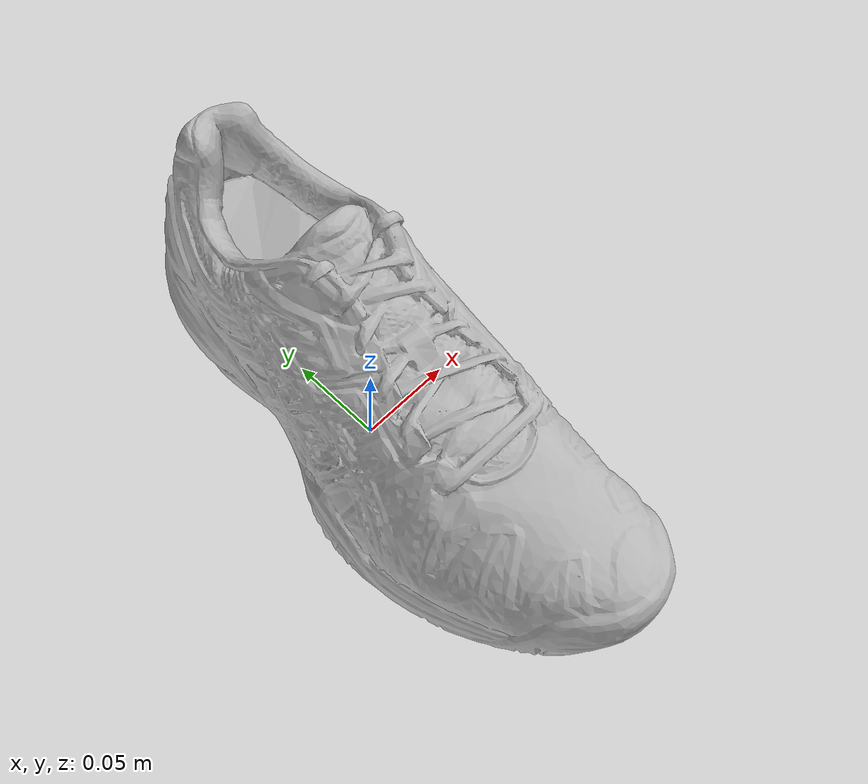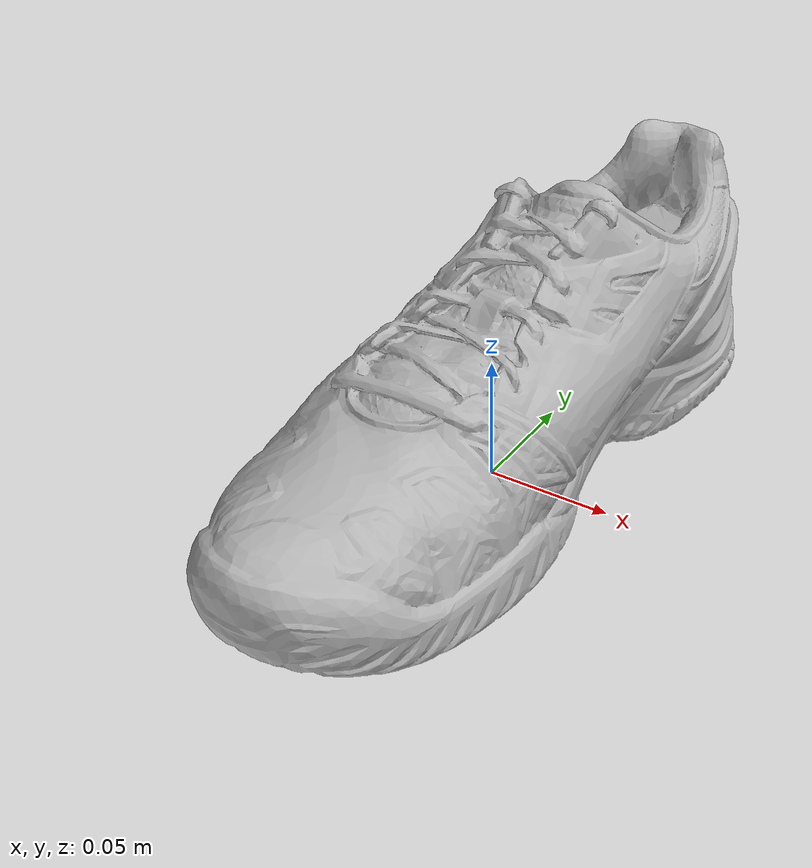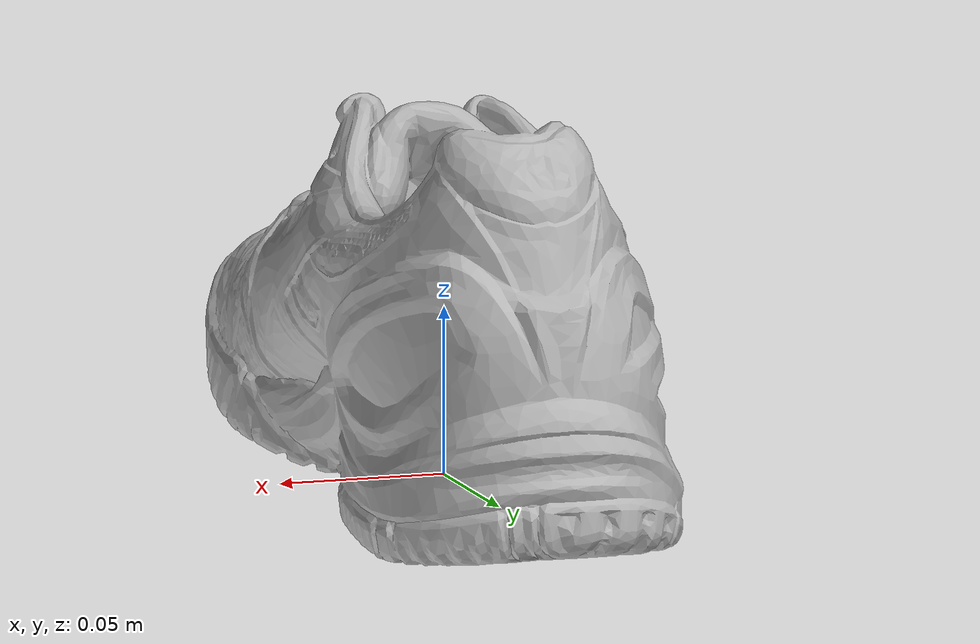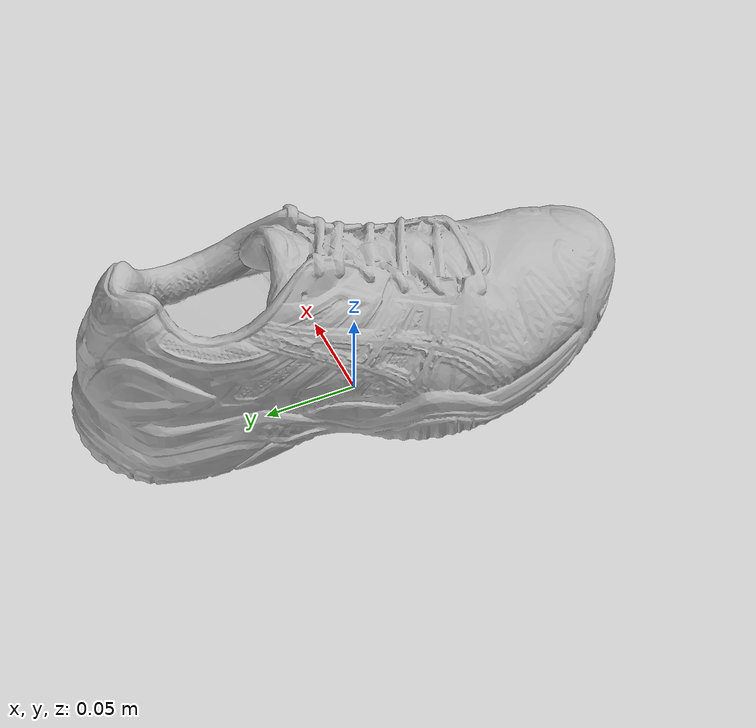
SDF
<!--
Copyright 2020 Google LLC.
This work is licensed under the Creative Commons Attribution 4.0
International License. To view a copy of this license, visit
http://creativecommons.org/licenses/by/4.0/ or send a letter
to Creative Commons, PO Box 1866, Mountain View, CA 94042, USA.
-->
<?xml version="1.0" ?>
<sdf version="1.6">
  <model name="ASICS_GELResolution_5_Flash_YellowBlackSilver">
    <link name="link_0">
      <visual name="visual">
        <geometry>
          <mesh>
            <uri>meshes/model.obj</uri>
          </mesh>
        </geometry>
      </visual>
      <collision name="collision_0">
        <geometry>
          <mesh>
            <uri>meshes/model.obj</uri>
          </mesh>
        </geometry>
      </collision>
    </link>
  </model>
</sdf>
